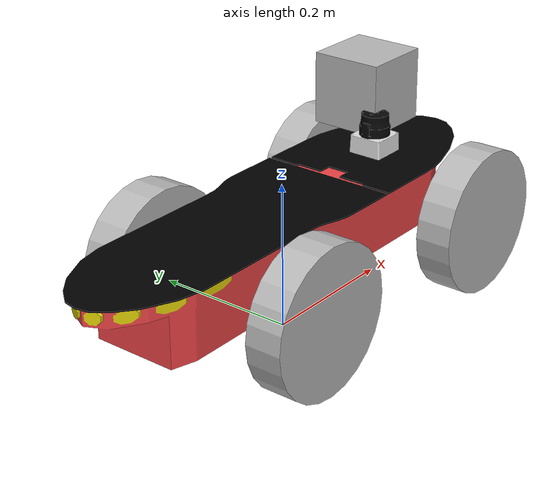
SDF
<?xml version='1.0'?>
<sdf version='1.4'>
  <model name="my_robot">
    <static>false</static>
          <link name='chassis'>
            <pose>0 0 .1 0 0 0</pose>

            <collision name='collision'>
              <geometry>
                <box>
                  <size>.6 .2 .1</size>
                </box>
              </geometry>
            </collision>

	<visual name='visual'>
		<pose>0 0 0.05 0 0 0</pose>
	      <geometry>
	        <mesh>
        	  <uri>model://pioneer2dx/meshes/chassis.dae</uri>
		<scale>1.4 0.5 0.5</scale>
    	   	 </mesh>
        	</geometry>
    	</visual>

	</link>
      <link name="left_wheel">
        <pose>0.25 0.13 0.1 0 1.5707 1.5707</pose>
        <collision name="collision">
          <geometry>
            <cylinder>
              <radius>.1</radius>
              <length>.05</length>
            </cylinder>
          </geometry>
        </collision>
        <visual name="visual">
          <geometry>
            <cylinder>
              <radius>.1</radius>
              <length>.05</length>
            </cylinder>
          </geometry>
        </visual>
      </link>
      <link name="right_wheel">
        <pose>0.25 -0.13 0.1 0 1.5707 1.5707</pose>
        <collision name="collision">
          <geometry>
            <cylinder>
              <radius>.1</radius>
              <length>.05</length>
            </cylinder>
          </geometry>
        </collision>
        <visual name="visual">
          <geometry>
            <cylinder>
              <radius>.1</radius>
              <length>.05</length>
            </cylinder>
          </geometry>
        </visual>
      </link>

      <joint type="revolute" name="left_wheel_hinge">
        <pose>0 0 -0.03 0 0 0</pose>
        <child>left_wheel</child>
        <parent>chassis</parent>
        <axis>
          <xyz>0 -1 0</xyz>
        </axis>
      </joint>

      <joint type="revolute" name="right_wheel_hinge">
        <pose>0 0 0.03 0 0 0</pose>
        <child>right_wheel</child>
        <parent>chassis</parent>
        <axis>
          <xyz>0 -1 0</xyz>
        </axis>
      </joint>

      <link name="left_wheel_back">
        <pose>-0.1 0.13 0.1 0 1.5707 1.5707</pose>
        <collision name="collision">
          <geometry>
            <cylinder>
              <radius>.1</radius>
              <length>.05</length>
            </cylinder>
          </geometry>
        </collision>
        <visual name="visual">
          <geometry>
            <cylinder>
              <radius>.1</radius>
              <length>.05</length>
            </cylinder>
          </geometry>
        </visual>
      </link>
      <link name="right_wheel_back">
        <pose>-0.1 -0.13 0.1 0 1.5707 1.5707</pose>
        <collision name="collision">
          <geometry>
            <cylinder>
              <radius>.1</radius>
              <length>.05</length>
            </cylinder>
          </geometry>
        </collision>
        <visual name="visual">
          <geometry>
            <cylinder>
              <radius>.1</radius>
              <length>.05</length>
            </cylinder>
          </geometry>
        </visual>
      </link>

      <joint type="revolute" name="left_wheel_hinge_back">
        <pose>0 0 -0.03 0 0 0</pose>
        <child>left_wheel_back</child>
        <parent>chassis</parent>
        <axis>
          <xyz>0 1 0</xyz>
        </axis>
      </joint>

      <joint type="revolute" name="right_wheel_hinge_back">
        <pose>0 0 0.03 0 0 0</pose>
        <child>right_wheel_back</child>
        <parent>chassis</parent>
        <axis>
          <xyz>0 1 0</xyz>
        </axis>
      </joint>

	    <include>
      <uri>model://hokuyo</uri>
      <pose>0.2 0 0.2 0 0 0</pose>
    </include>
    <joint name="hokuyo_joint" type="revolute">
      <child>hokuyo::link</child>
      <parent>chassis</parent>
      <axis>
        <xyz>0 0 1</xyz>
        <limit>
          <upper>0</upper>
          <lower>0</lower>
        </limit>
      </axis>
    </joint>

	    <include>
      <uri>model://camera</uri>
      <pose>0.2 0 0.2 0 0 0</pose>
    </include>
    <joint name="camera_joint" type="revolute">
      <child>camera::link</child>
      <parent>chassis</parent>
      <axis>
        <xyz>0 0 1</xyz>
        <limit>
          <upper>0</upper>
          <lower>0</lower>
        </limit>
      </axis>
    </joint>

  </model>
</sdf>

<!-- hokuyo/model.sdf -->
<sdf version="1.4">
  <model name="hokuyo">
    <link name="link">
      <inertial>
        <mass>0.1</mass>
      </inertial>
      <visual name="visual">
        <geometry>
          <mesh>
            <uri>model://hokuyo/meshes/hokuyo.dae</uri>
          </mesh>
        </geometry>
      </visual>
      <sensor name="laser" type="ray">
        <pose>0.01 0 0.03 0 -0 0</pose>
        <ray>
          <scan>
            <horizontal>
              <samples>640</samples>
              <resolution>1</resolution>
              <min_angle>-2.26889</min_angle>
              <max_angle>2.268899</max_angle>
            </horizontal>
          </scan>
          <range>
            <min>0.08</min>
            <max>10</max>
            <resolution>0.01</resolution>
          </range>
        </ray>
        <plugin name="laser" filename="libRayPlugin.so" />
        <always_on>1</always_on>
        <update_rate>30</update_rate>
        <visualize>true</visualize>
      </sensor>
    </link>
  </model>
</sdf>

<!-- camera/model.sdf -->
<sdf version="1.4">
  <model name="camera">
    <link name="link">
      <pose>0.05 0.05 0.05 0 0 0</pose>
      <inertial>
        <mass>0.1</mass>
      </inertial>
      <visual name="visual">
        <geometry>
          <box>
            <size>0.1 0.1 0.1</size>
          </box>
        </geometry>
      </visual>
      <sensor name="camera" type="camera">
        <camera>
          <horizontal_fov>1.047</horizontal_fov>
          <image>
            <width>320</width>
            <height>240</height>
          </image>
          <clip>
            <near>0.1</near>
            <far>100</far>
          </clip>
        </camera>
        <always_on>1</always_on>
        <update_rate>30</update_rate>
        <visualize>true</visualize>
      </sensor>
    </link>
  </model>
</sdf>
